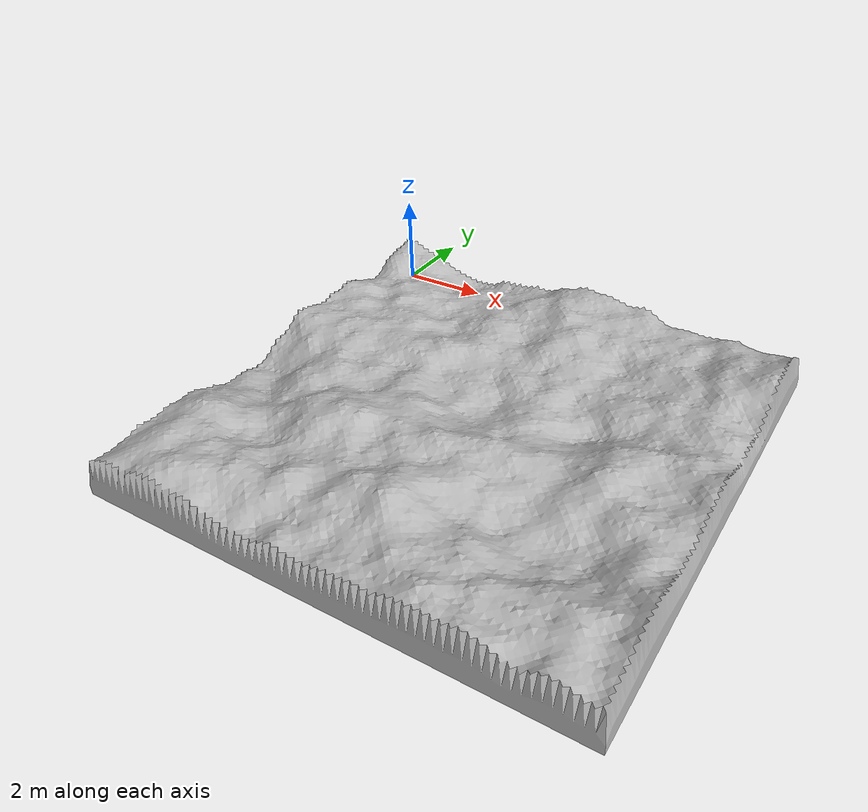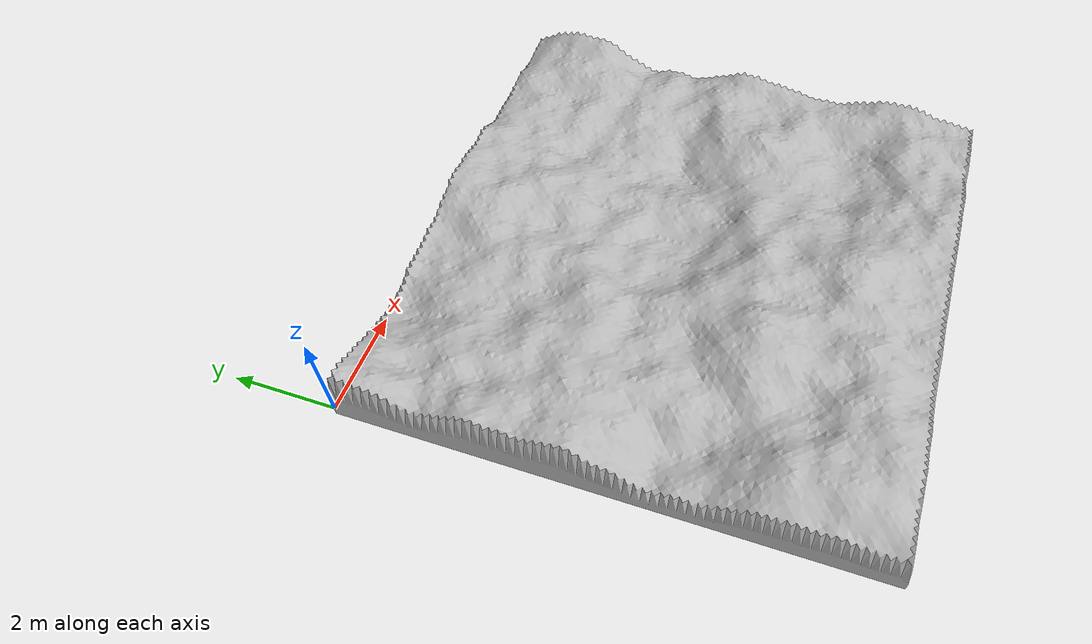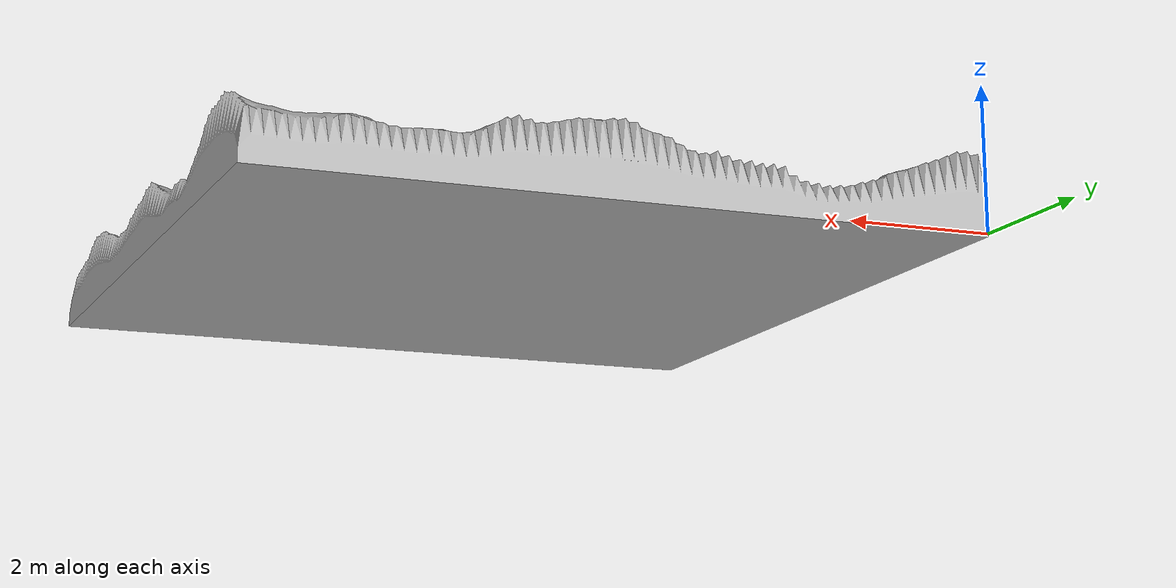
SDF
<?xml version="1.0" ?>
<sdf version="1.6">
  <model name="hill3">
    <static>true</static> <!-- Set to true if the model should not move -->
    <pose>0 0 0 0 0 0</pose>
    <!--z offset is -18 for full scale-->

    <link name="link">
      <collision name="hill3_collision">

        <geometry>
          <mesh>
            <uri>model://meshes/hills.stl</uri>
            <scale>0.5 0.5 0.5</scale>
          </mesh>
        </geometry>
      </collision>
      <visual name="hill3_visual">

        <geometry>
          <mesh>
            <uri>model://meshes/hills.stl</uri>
            <scale>0.5 0.5 0.5</scale>
          </mesh>
        </geometry>
        <material>
          <script>
            <uri>model://materials/scripts/sand_pebbles.material</uri>
            <name>custom_ground/Image</name>
          </script>
        </material>
      </visual>
    </link>
  </model>
</sdf>
